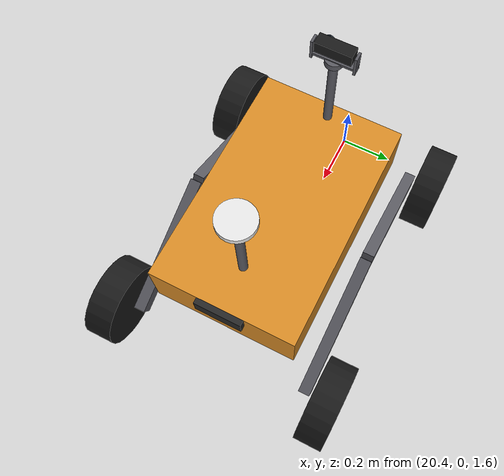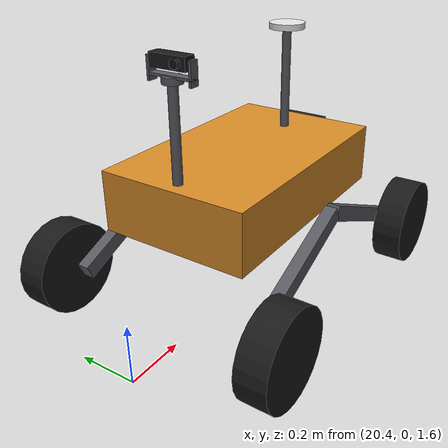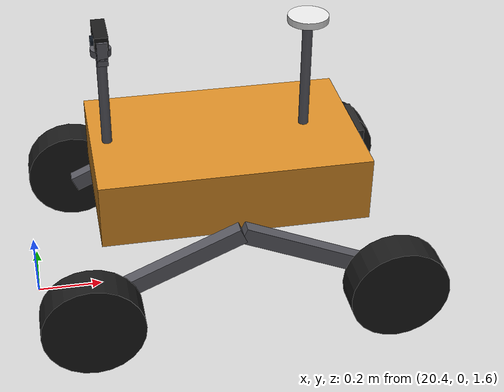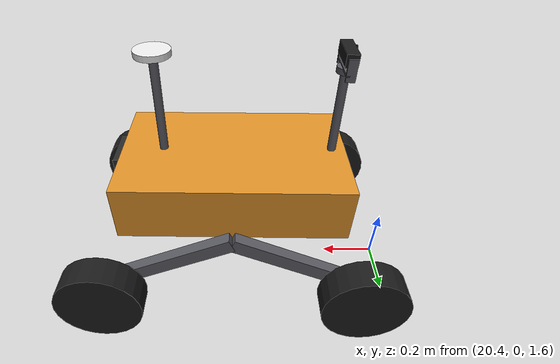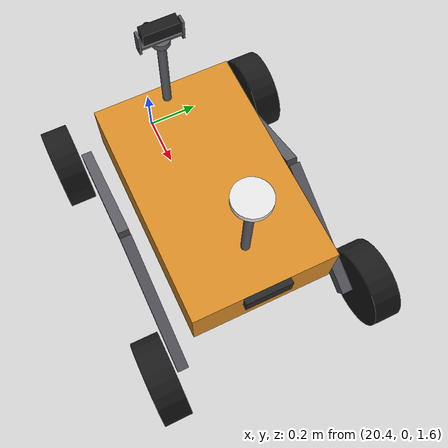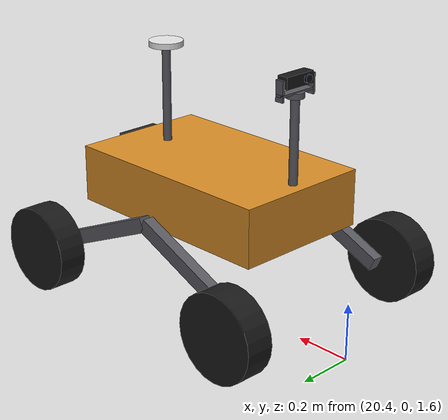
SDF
<sdf version="1.11">
 <world name="proving_ground">
  <physics name="1ms" type="dart">
   <max_step_size>0.001</max_step_size>
   <real_time_factor>0</real_time_factor>
  </physics>
  <plugin filename="gz-sim-physics-system" name="gz::sim::systems::Physics"/>
  <plugin filename="gz-sim-imu-system" name="gz::sim::systems::Imu"/>
  <scene>
   <ambient>0.5 0.48 0.46 1</ambient>
   <background>0.62 0.74 0.9 1</background>
   <grid>false</grid>
   <shadows>true</shadows>
  </scene>
  <light type="directional" name="sun">
   <pose>0 0 100 0 0 0</pose>
   <diffuse>1 0.96 0.9 1</diffuse>
   <specular>0.3 0.3 0.3 1</specular>
   <direction>-0.45 0.35 -0.82</direction>
  </light>
  <spherical_coordinates>
   <surface_model>EARTH_WGS84</surface_model>
   <world_frame_orientation>ENU</world_frame_orientation>
   <latitude_deg>38.4085584</latitude_deg>
   <longitude_deg>-110.785343</longitude_deg>
   <elevation>1369.51885</elevation>
   <heading_deg>0</heading_deg>
  </spherical_coordinates>
  <include>
   <uri>model://rover</uri>
   <name>rover</name>
   <pose>21 0 1.6373385011970705 0 0 3.141592653589793</pose>
  </include>
 </world>
</sdf>

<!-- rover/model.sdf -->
<sdf version="1.11">
  <model name="rover">
    <link name="base_link">
      <inertial>
        <pose>0 0 0.4 0 0 0</pose>
        <mass>30</mass>
        <inertia>
          <ixx>0.725</ixx>
          <iyy>1.7</iyy>
          <izz>2.225</izz>
          <ixy>0</ixy>
          <ixz>0</ixz>
          <iyz>0</iyz>
        </inertia>
      </inertial>
      <collision name="chassis_collision">
        <pose>0 0 0.4 0 0 0</pose>
        <geometry>
          <box>
            <size>0.8 0.5 0.2</size>
          </box>
        </geometry>
      </collision>
      <visual name="chassis_visual">
        <pose>0 0 0.4 0 0 0</pose>
        <geometry>
          <box>
            <size>0.8 0.5 0.2</size>
          </box>
        </geometry>
        <material>
          <ambient>0.85 0.55 0.15 1</ambient>
          <diffuse>0.85 0.55 0.15 1</diffuse>
        </material>
      </visual>
      <sensor name="imu" type="imu">
        <pose>0 0 0.4 0 0 0</pose>
        <always_on>true</always_on>
        <update_rate>100</update_rate>
        <topic>/model/rover/imu</topic>
        <gz_frame_id>base_link</gz_frame_id>
        <imu>
          <angular_velocity>
            <x>
              <noise type="gaussian">
                <mean>0</mean>
                <stddev>0.002</stddev>
              </noise>
            </x>
            <y>
              <noise type="gaussian">
                <mean>0</mean>
                <stddev>0.002</stddev>
              </noise>
            </y>
            <z>
              <noise type="gaussian">
                <mean>0</mean>
                <stddev>0.002</stddev>
              </noise>
            </z>
          </angular_velocity>
          <linear_acceleration>
            <x>
              <noise type="gaussian">
                <mean>0</mean>
                <stddev>0.02</stddev>
              </noise>
            </x>
            <y>
              <noise type="gaussian">
                <mean>0</mean>
                <stddev>0.02</stddev>
              </noise>
            </y>
            <z>
              <noise type="gaussian">
                <mean>0</mean>
                <stddev>0.02</stddev>
              </noise>
            </z>
          </linear_acceleration>
        </imu>
      </sensor>
      <visual name="gnss_mast_visual">
        <pose>-0.25 0 0.675 0 0 0</pose>
        <geometry>
          <cylinder>
            <radius>0.015</radius>
            <length>0.35</length>
          </cylinder>
        </geometry>
        <material>
          <ambient>0.35 0.35 0.38 1</ambient>
          <diffuse>0.35 0.35 0.38 1</diffuse>
        </material>
      </visual>
      <visual name="gnss_antenna_visual">
        <pose>-0.25 0 0.85 0 0 0</pose>
        <geometry>
          <cylinder>
            <radius>0.06</radius>
            <length>0.02</length>
          </cylinder>
        </geometry>
        <material>
          <ambient>0.9 0.9 0.9 1</ambient>
          <diffuse>0.9 0.9 0.9 1</diffuse>
        </material>
      </visual>
      <sensor name="gnss" type="navsat">
        <pose>-0.25 0 0.85 0 0 0</pose>
        <always_on>true</always_on>
        <update_rate>10</update_rate>
        <topic>/model/rover/navsat</topic>
        <gz_frame_id>gnss</gz_frame_id>
        <navsat>
          <position_sensing>
            <horizontal>
              <noise type="gaussian">
                <mean>0</mean>
                <stddev>4.49155587e-06</stddev>
              </noise>
            </horizontal>
            <vertical>
              <noise type="gaussian">
                <mean>0</mean>
                <stddev>1</stddev>
              </noise>
            </vertical>
          </position_sensing>
        </navsat>
      </sensor>
      <visual name="camera_mast_visual">
        <pose>0.35 0 0.645 0 0 0</pose>
        <geometry>
          <cylinder>
            <radius>0.015</radius>
            <length>0.29</length>
          </cylinder>
        </geometry>
        <material>
          <ambient>0.35 0.35 0.38 1</ambient>
          <diffuse>0.35 0.35 0.38 1</diffuse>
        </material>
      </visual>
      <visual name="led_visual">
        <pose>-0.41 0 0.47 0 0 0</pose>
        <geometry>
          <box>
            <size>0.02 0.16 0.06</size>
          </box>
        </geometry>
        <material>
          <ambient>0.15 0.15 0.15 1</ambient>
          <diffuse>0.15 0.15 0.15 1</diffuse>
          <emissive>0 0 0 1</emissive>
        </material>
      </visual>
    </link>
    <link name="camera_pan_link">
      <pose>0.35 0 0.8 0 0 0</pose>
      <inertial>
        <pose>0 0 0 0 0 0</pose>
        <mass>0.02</mass>
        <inertia>
          <ixx>4.35e-05</ixx>
          <iyy>1.2e-05</iyy>
          <izz>4.35e-05</izz>
          <ixy>0</ixy>
          <ixz>0</ixz>
          <iyz>0</iyz>
        </inertia>
      </inertial>
      <visual name="turntable_visual">
        <pose>0 0 0 0 0 0</pose>
        <geometry>
          <cylinder>
            <radius>0.03</radius>
            <length>0.02</length>
          </cylinder>
        </geometry>
        <material>
          <ambient>0.35 0.35 0.38 1</ambient>
          <diffuse>0.35 0.35 0.38 1</diffuse>
        </material>
      </visual>
      <visual name="yoke_left_visual">
        <pose>0 0.07 0.025 0 0 0</pose>
        <geometry>
          <box>
            <size>0.03 0.008 0.07</size>
          </box>
        </geometry>
        <material>
          <ambient>0.35 0.35 0.38 1</ambient>
          <diffuse>0.35 0.35 0.38 1</diffuse>
        </material>
      </visual>
      <visual name="yoke_right_visual">
        <pose>0 -0.07 0.025 0 0 0</pose>
        <geometry>
          <box>
            <size>0.03 0.008 0.07</size>
          </box>
        </geometry>
        <material>
          <ambient>0.35 0.35 0.38 1</ambient>
          <diffuse>0.35 0.35 0.38 1</diffuse>
        </material>
      </visual>
      <visual name="yoke_base_visual">
        <pose>0 0 0.01 0 0 0</pose>
        <geometry>
          <box>
            <size>0.03 0.148 0.008</size>
          </box>
        </geometry>
        <material>
          <ambient>0.35 0.35 0.38 1</ambient>
          <diffuse>0.35 0.35 0.38 1</diffuse>
        </material>
      </visual>
    </link>
    <link name="camera_tilt_link">
      <pose>0.35 0 0.85 0 0 0</pose>
      <inertial>
        <pose>0 0 0 0 0 0</pose>
        <mass>0.02</mass>
        <inertia>
          <ixx>2.66666667e-05</ixx>
          <iyy>5.33333333e-06</iyy>
          <izz>2.66666667e-05</izz>
          <ixy>0</ixy>
          <ixz>0</ixz>
          <iyz>0</iyz>
        </inertia>
      </inertial>
      <visual name="camera_visual">
        <pose>0 0 0 0 0 0</pose>
        <geometry>
          <box>
            <size>0.04 0.12 0.04</size>
          </box>
        </geometry>
        <material>
          <ambient>0.1 0.1 0.1 1</ambient>
          <diffuse>0.1 0.1 0.1 1</diffuse>
        </material>
      </visual>
      <visual name="lens_visual">
        <pose>0.024 0.03 0 0 1.57079633 0</pose>
        <geometry>
          <cylinder>
            <radius>0.014</radius>
            <length>0.012</length>
          </cylinder>
        </geometry>
        <material>
          <ambient>0.05 0.08 0.12 1</ambient>
          <diffuse>0.05 0.08 0.12 1</diffuse>
        </material>
      </visual>
      <sensor name="camera" type="rgbd_camera">
        <pose>0 0 0 0 0 0</pose>
        <always_on>true</always_on>
        <update_rate>15</update_rate>
        <topic>/model/rover/camera</topic>
        <gz_frame_id>camera</gz_frame_id>
        <camera>
          <horizontal_fov>1.5</horizontal_fov>
          <image>
            <width>640</width>
            <height>480</height>
          </image>
          <clip>
            <near>0.1</near>
            <far>40</far>
          </clip>
        </camera>
      </sensor>
    </link>
    <joint name="camera_pan_joint" type="revolute">
      <parent>base_link</parent>
      <child>camera_pan_link</child>
      <axis>
        <xyz>0 0 1</xyz>
        <limit>
          <lower>-2.8</lower>
          <upper>2.8</upper>
          <effort>5</effort>
          <velocity>2</velocity>
        </limit>
        <dynamics>
          <damping>0.01</damping>
        </dynamics>
      </axis>
    </joint>
    <plugin filename="gz-sim-joint-position-controller-system" name="gz::sim::systems::JointPositionController">
      <joint_name>camera_pan_joint</joint_name>
      <topic>/model/rover/joint/camera_pan_joint/0/cmd_pos</topic>
      <use_velocity_commands>true</use_velocity_commands>
      <p_gain>10</p_gain>
      <cmd_max>2</cmd_max>
      <cmd_min>-2</cmd_min>
      <initial_position>0</initial_position>
    </plugin>
    <joint name="camera_tilt_joint" type="revolute">
      <parent>camera_pan_link</parent>
      <child>camera_tilt_link</child>
      <axis>
        <xyz>0 1 0</xyz>
        <limit>
          <lower>-0.6</lower>
          <upper>1.2</upper>
          <effort>5</effort>
          <velocity>2</velocity>
        </limit>
        <dynamics>
          <damping>0.01</damping>
        </dynamics>
      </axis>
    </joint>
    <plugin filename="gz-sim-joint-position-controller-system" name="gz::sim::systems::JointPositionController">
      <joint_name>camera_tilt_joint</joint_name>
      <topic>/model/rover/joint/camera_tilt_joint/0/cmd_pos</topic>
      <use_velocity_commands>true</use_velocity_commands>
      <p_gain>10</p_gain>
      <cmd_max>2</cmd_max>
      <cmd_min>-2</cmd_min>
      <initial_position>0.12</initial_position>
    </plugin>
    <link name="rocker_left">
      <pose>0 0.4 0.35 0 0 0</pose>
      <inertial>
        <pose>0 -0.08 -0.1 0 0 0</pose>
        <mass>3</mass>
        <inertia>
          <ixx>0.01</ixx>
          <iyy>0.2125</iyy>
          <izz>0.2025</izz>
          <ixy>0</ixy>
          <ixz>0</ixz>
          <iyz>0</iyz>
        </inertia>
      </inertial>
      <collision name="front_arm_collision">
        <pose>0.225 -0.08 -0.1 0 0.41822433 0</pose>
        <geometry>
          <box>
            <size>0.49244289 0.04 0.05</size>
          </box>
        </geometry>
      </collision>
      <visual name="front_arm_visual">
        <pose>0.225 -0.08 -0.1 0 0.41822433 0</pose>
        <geometry>
          <box>
            <size>0.49244289 0.04 0.05</size>
          </box>
        </geometry>
        <material>
          <ambient>0.35 0.35 0.38 1</ambient>
          <diffuse>0.35 0.35 0.38 1</diffuse>
        </material>
      </visual>
      <collision name="rear_arm_collision">
        <pose>-0.225 -0.08 -0.1 0 -0.41822433 0</pose>
        <geometry>
          <box>
            <size>0.49244289 0.04 0.05</size>
          </box>
        </geometry>
      </collision>
      <visual name="rear_arm_visual">
        <pose>-0.225 -0.08 -0.1 0 -0.41822433 0</pose>
        <geometry>
          <box>
            <size>0.49244289 0.04 0.05</size>
          </box>
        </geometry>
        <material>
          <ambient>0.35 0.35 0.38 1</ambient>
          <diffuse>0.35 0.35 0.38 1</diffuse>
        </material>
      </visual>
    </link>
    <joint name="rocker_left_joint" type="revolute">
      <parent>base_link</parent>
      <child>rocker_left</child>
      <axis>
        <xyz>0 1 0</xyz>
        <limit>
          <lower>-0.5</lower>
          <upper>0.5</upper>
        </limit>
        <dynamics>
          <damping>0.5</damping>
        </dynamics>
      </axis>
    </joint>
    <link name="wheel_fl">
      <pose>0.45 0.4 0.15 0 0 0</pose>
      <inertial>
        <pose>0 0 0 0 0 0</pose>
        <mass>2.5</mass>
        <inertia>
          <ixx>0.0161458333</ixx>
          <iyy>0.028125</iyy>
          <izz>0.0161458333</izz>
          <ixy>0</ixy>
          <ixz>0</ixz>
          <iyz>0</iyz>
        </inertia>
      </inertial>
      <collision name="tire_collision">
        <pose>0 0 0 1.57079633 0 0</pose>
        <geometry>
          <cylinder>
            <radius>0.15</radius>
            <length>0.1</length>
          </cylinder>
        </geometry>
        <surface>
          <friction>
            <ode>
              <mu>0.5</mu>
              <mu2>1</mu2>
              <fdir1>0 0 1</fdir1>
            </ode>
          </friction>
        </surface>
      </collision>
      <visual name="tire_visual">
        <pose>0 0 0 1.57079633 0 0</pose>
        <geometry>
          <cylinder>
            <radius>0.15</radius>
            <length>0.1</length>
          </cylinder>
        </geometry>
        <material>
          <ambient>0.1 0.1 0.1 1</ambient>
          <diffuse>0.1 0.1 0.1 1</diffuse>
        </material>
      </visual>
    </link>
    <joint name="wheel_fl_joint" type="revolute">
      <parent>rocker_left</parent>
      <child>wheel_fl</child>
      <axis>
        <xyz>0 1 0</xyz>
        <limit>
          <lower>-1e+16</lower>
          <upper>1e+16</upper>
          <effort>30</effort>
          <velocity>10</velocity>
        </limit>
      </axis>
    </joint>
    <link name="wheel_rl">
      <pose>-0.45 0.4 0.15 0 0 0</pose>
      <inertial>
        <pose>0 0 0 0 0 0</pose>
        <mass>2.5</mass>
        <inertia>
          <ixx>0.0161458333</ixx>
          <iyy>0.028125</iyy>
          <izz>0.0161458333</izz>
          <ixy>0</ixy>
          <ixz>0</ixz>
          <iyz>0</iyz>
        </inertia>
      </inertial>
      <collision name="tire_collision">
        <pose>0 0 0 1.57079633 0 0</pose>
        <geometry>
          <cylinder>
            <radius>0.15</radius>
            <length>0.1</length>
          </cylinder>
        </geometry>
        <surface>
          <friction>
            <ode>
              <mu>0.5</mu>
              <mu2>1</mu2>
              <fdir1>0 0 1</fdir1>
            </ode>
          </friction>
        </surface>
      </collision>
      <visual name="tire_visual">
        <pose>0 0 0 1.57079633 0 0</pose>
        <geometry>
          <cylinder>
            <radius>0.15</radius>
            <length>0.1</length>
          </cylinder>
        </geometry>
        <material>
          <ambient>0.1 0.1 0.1 1</ambient>
          <diffuse>0.1 0.1 0.1 1</diffuse>
        </material>
      </visual>
    </link>
    <joint name="wheel_rl_joint" type="revolute">
      <parent>rocker_left</parent>
      <child>wheel_rl</child>
      <axis>
        <xyz>0 1 0</xyz>
        <limit>
          <lower>-1e+16</lower>
          <upper>1e+16</upper>
          <effort>30</effort>
          <velocity>10</velocity>
        </limit>
      </axis>
    </joint>
    <link name="rocker_right">
      <pose>0 -0.4 0.35 0 0 0</pose>
      <inertial>
        <pose>0 0.08 -0.1 0 0 0</pose>
        <mass>3</mass>
        <inertia>
          <ixx>0.01</ixx>
          <iyy>0.2125</iyy>
          <izz>0.2025</izz>
          <ixy>0</ixy>
          <ixz>0</ixz>
          <iyz>0</iyz>
        </inertia>
      </inertial>
      <collision name="front_arm_collision">
        <pose>0.225 0.08 -0.1 0 0.41822433 0</pose>
        <geometry>
          <box>
            <size>0.49244289 0.04 0.05</size>
          </box>
        </geometry>
      </collision>
      <visual name="front_arm_visual">
        <pose>0.225 0.08 -0.1 0 0.41822433 0</pose>
        <geometry>
          <box>
            <size>0.49244289 0.04 0.05</size>
          </box>
        </geometry>
        <material>
          <ambient>0.35 0.35 0.38 1</ambient>
          <diffuse>0.35 0.35 0.38 1</diffuse>
        </material>
      </visual>
      <collision name="rear_arm_collision">
        <pose>-0.225 0.08 -0.1 0 -0.41822433 0</pose>
        <geometry>
          <box>
            <size>0.49244289 0.04 0.05</size>
          </box>
        </geometry>
      </collision>
      <visual name="rear_arm_visual">
        <pose>-0.225 0.08 -0.1 0 -0.41822433 0</pose>
        <geometry>
          <box>
            <size>0.49244289 0.04 0.05</size>
          </box>
        </geometry>
        <material>
          <ambient>0.35 0.35 0.38 1</ambient>
          <diffuse>0.35 0.35 0.38 1</diffuse>
        </material>
      </visual>
    </link>
    <joint name="rocker_right_joint" type="revolute">
      <parent>base_link</parent>
      <child>rocker_right</child>
      <axis>
        <xyz>0 1 0</xyz>
        <limit>
          <lower>-0.5</lower>
          <upper>0.5</upper>
        </limit>
        <dynamics>
          <damping>0.5</damping>
        </dynamics>
      </axis>
    </joint>
    <link name="wheel_fr">
      <pose>0.45 -0.4 0.15 0 0 0</pose>
      <inertial>
        <pose>0 0 0 0 0 0</pose>
        <mass>2.5</mass>
        <inertia>
          <ixx>0.0161458333</ixx>
          <iyy>0.028125</iyy>
          <izz>0.0161458333</izz>
          <ixy>0</ixy>
          <ixz>0</ixz>
          <iyz>0</iyz>
        </inertia>
      </inertial>
      <collision name="tire_collision">
        <pose>0 0 0 1.57079633 0 0</pose>
        <geometry>
          <cylinder>
            <radius>0.15</radius>
            <length>0.1</length>
          </cylinder>
        </geometry>
        <surface>
          <friction>
            <ode>
              <mu>0.5</mu>
              <mu2>1</mu2>
              <fdir1>0 0 1</fdir1>
            </ode>
          </friction>
        </surface>
      </collision>
      <visual name="tire_visual">
        <pose>0 0 0 1.57079633 0 0</pose>
        <geometry>
          <cylinder>
            <radius>0.15</radius>
            <length>0.1</length>
          </cylinder>
        </geometry>
        <material>
          <ambient>0.1 0.1 0.1 1</ambient>
          <diffuse>0.1 0.1 0.1 1</diffuse>
        </material>
      </visual>
    </link>
    <joint name="wheel_fr_joint" type="revolute">
      <parent>rocker_right</parent>
      <child>wheel_fr</child>
      <axis>
        <xyz>0 1 0</xyz>
        <limit>
          <lower>-1e+16</lower>
          <upper>1e+16</upper>
          <effort>30</effort>
          <velocity>10</velocity>
        </limit>
      </axis>
    </joint>
    <link name="wheel_rr">
      <pose>-0.45 -0.4 0.15 0 0 0</pose>
      <inertial>
        <pose>0 0 0 0 0 0</pose>
        <mass>2.5</mass>
        <inertia>
          <ixx>0.0161458333</ixx>
          <iyy>0.028125</iyy>
          <izz>0.0161458333</izz>
          <ixy>0</ixy>
          <ixz>0</ixz>
          <iyz>0</iyz>
        </inertia>
      </inertial>
      <collision name="tire_collision">
        <pose>0 0 0 1.57079633 0 0</pose>
        <geometry>
          <cylinder>
            <radius>0.15</radius>
            <length>0.1</length>
          </cylinder>
        </geometry>
        <surface>
          <friction>
            <ode>
              <mu>0.5</mu>
              <mu2>1</mu2>
              <fdir1>0 0 1</fdir1>
            </ode>
          </friction>
        </surface>
      </collision>
      <visual name="tire_visual">
        <pose>0 0 0 1.57079633 0 0</pose>
        <geometry>
          <cylinder>
            <radius>0.15</radius>
            <length>0.1</length>
          </cylinder>
        </geometry>
        <material>
          <ambient>0.1 0.1 0.1 1</ambient>
          <diffuse>0.1 0.1 0.1 1</diffuse>
        </material>
      </visual>
    </link>
    <joint name="wheel_rr_joint" type="revolute">
      <parent>rocker_right</parent>
      <child>wheel_rr</child>
      <axis>
        <xyz>0 1 0</xyz>
        <limit>
          <lower>-1e+16</lower>
          <upper>1e+16</upper>
          <effort>30</effort>
          <velocity>10</velocity>
        </limit>
      </axis>
    </joint>
    <plugin filename="RockerDifferential" name="rover_sim::RockerDifferential">
      <left_joint>rocker_left_joint</left_joint>
      <right_joint>rocker_right_joint</right_joint>
      <stiffness>5000</stiffness>
      <damping>100</damping>
    </plugin>
    <plugin filename="gz-sim-diff-drive-system" name="gz::sim::systems::DiffDrive">
      <left_joint>wheel_fl_joint</left_joint>
      <left_joint>wheel_rl_joint</left_joint>
      <right_joint>wheel_fr_joint</right_joint>
      <right_joint>wheel_rr_joint</right_joint>
      <wheel_separation>0.8</wheel_separation>
      <wheel_radius>0.15</wheel_radius>
      <topic>/model/rover/cmd_vel</topic>
      <odom_topic>/model/rover/odometry</odom_topic>
      <tf_topic>/model/rover/tf</tf_topic>
      <frame_id>odom</frame_id>
      <child_frame_id>base_link</child_frame_id>
      <odom_publish_frequency>50</odom_publish_frequency>
    </plugin>
    <plugin filename="gz-sim-joint-state-publisher-system" name="gz::sim::systems::JointStatePublisher">
      <topic>/model/rover/joint_states</topic>
    </plugin>
    <plugin filename="gz-sim-odometry-publisher-system" name="gz::sim::systems::OdometryPublisher">
      <odom_topic>/model/rover/ground_truth</odom_topic>
      <odom_frame>world</odom_frame>
      <robot_base_frame>base_link</robot_base_frame>
      <dimensions>3</dimensions>
      <odom_publish_frequency>50</odom_publish_frequency>
    </plugin>
  </model>
</sdf>
